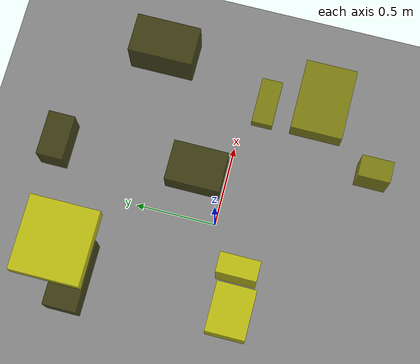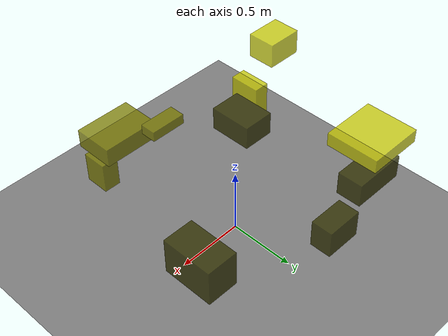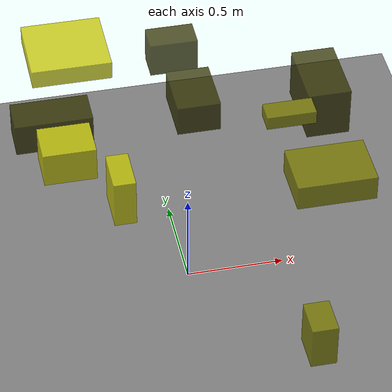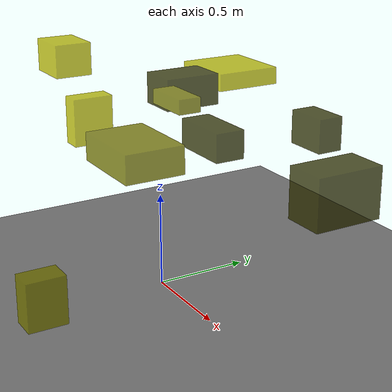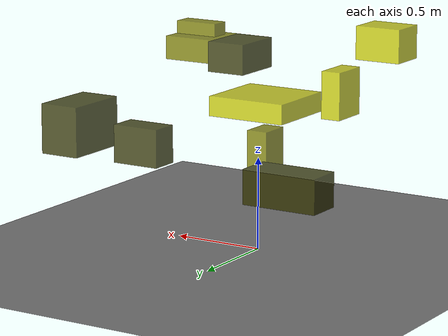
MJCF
<?xml version="1.0"?>
<mujoco model="obstacle_scene">
  <compiler angle="radian" coordinate="local"/>
  <option timestep="0.001" gravity="0 0 -9.81"/>

  <asset>
    <material name="obstacle_mat" rgba="0.8 0.8 0.0 0.8"/>
    <material name="ground_mat" rgba="0.5 0.5 0.5 1"/>
  </asset>

  <worldbody>
    <!-- Ground plane -->
    <geom name="ground" type="plane" size="3 3 0.1" material="ground_mat"/>

    <!-- Obstacles -->
    <body name="obstacle_0" pos="-0.575842 0.669514 0.551860">
      <geom name="obs_0" type="box" size="0.201680 0.095004 0.089222" rgba="0.2 0.2 0.0 0.8"/>
    </body>
    <body name="obstacle_1" pos="0.468751 -0.848781 0.327578">
      <geom name="obs_1" type="box" size="0.063706 0.094666 0.118198" rgba="0.5 0.5 0.0 0.8"/>
    </body>
    <body name="obstacle_2" pos="-0.476770 0.722688 0.970450">
      <geom name="obs_2" type="box" size="0.201842 0.188265 0.048479" rgba="0.8 0.8 0.0 0.8"/>
    </body>
    <body name="obstacle_3" pos="0.048683 0.107359 1.067656">
      <geom name="obs_3" type="box" size="0.104864 0.143355 0.078697" rgba="0.2 0.2 0.0 0.8"/>
    </body>
    <body name="obstacle_4" pos="0.595911 -0.443836 0.971713">
      <geom name="obs_4" type="box" size="0.192240 0.137797 0.064646" rgba="0.5 0.5 0.0 0.8"/>
    </body>
    <body name="obstacle_5" pos="-0.624275 -0.239739 1.142543">
      <geom name="obs_5" type="box" size="0.124508 0.099575 0.087531" rgba="0.8 0.8 0.0 0.8"/>
    </body>
    <body name="obstacle_6" pos="0.800610 0.496606 0.678792">
      <geom name="obs_6" type="box" size="0.110719 0.183603 0.132943" rgba="0.2 0.2 0.0 0.8"/>
    </body>
    <body name="obstacle_7" pos="0.460590 -0.159481 1.134427">
      <geom name="obs_7" type="box" size="0.120099 0.053853 0.034115" rgba="0.5 0.5 0.0 0.8"/>
    </body>
    <body name="obstacle_8" pos="-0.369760 -0.219061 0.852623">
      <geom name="obs_8" type="box" size="0.053683 0.108530 0.126631" rgba="0.8 0.8 0.0 0.8"/>
    </body>
    <body name="obstacle_9" pos="0.104259 0.920640 0.740668">
      <geom name="obs_9" type="box" size="0.124831 0.073848 0.095308" rgba="0.2 0.2 0.0 0.8"/>
    </body>
  </worldbody>
</mujoco>
